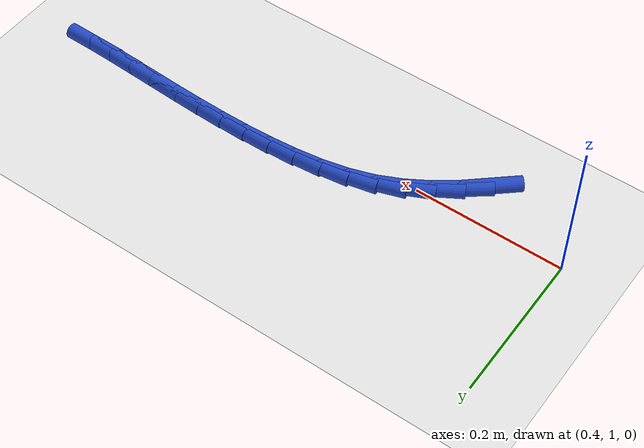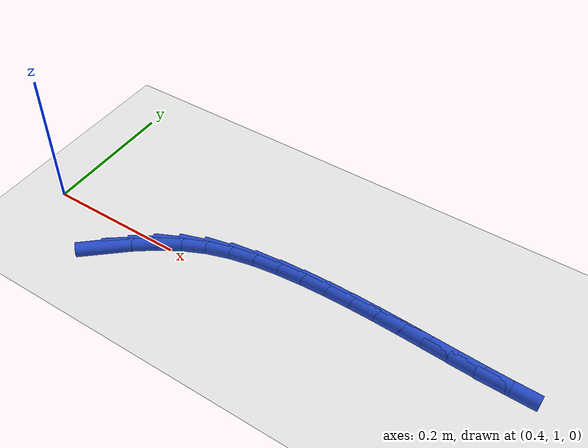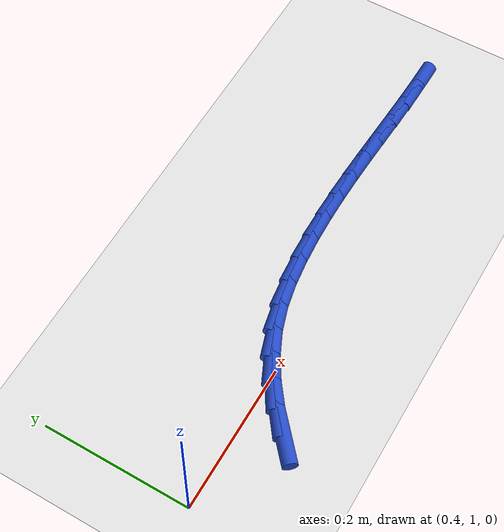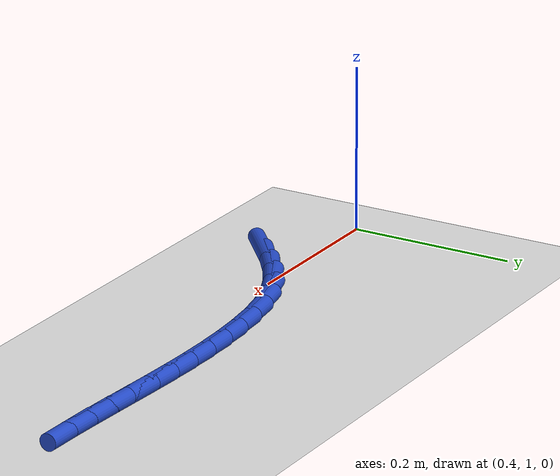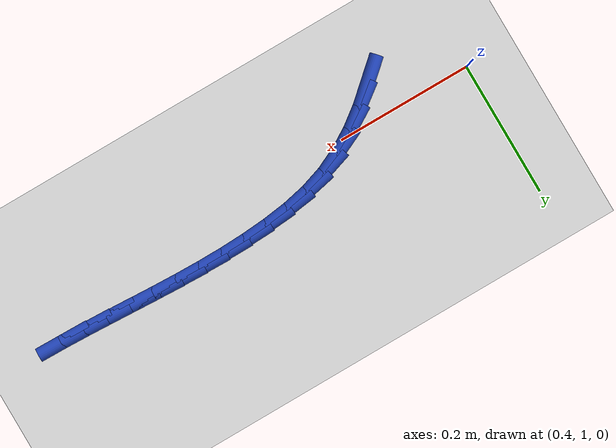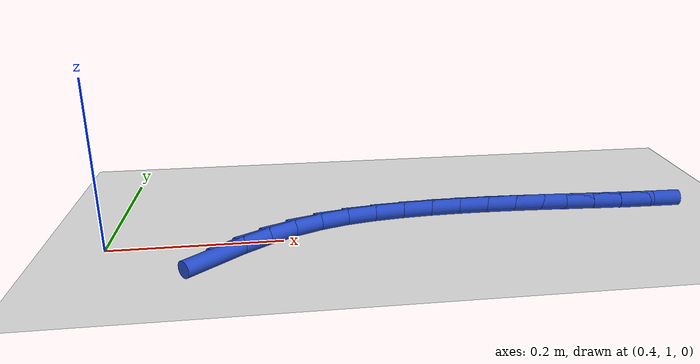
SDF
<sdf version="1.6">
 <world name="default">
  <model name="ground_plane">
   <static>1</static>
   <link name="link">
    <collision name="collision">
     <geometry><plane><normal>0 0 1</normal><size>100 100</size></plane></geometry>
     <surface><friction><ode><mu>100</mu><mu2>50</mu2></ode></friction></surface>
    </collision>
    <visual name="visual">
     <cast_shadows>0</cast_shadows>
     <geometry><plane><normal>0 0 1</normal><size>100 100</size></plane></geometry>
     <material>
      <script><uri>file://media/materials/scripts/gazebo.material</uri><name>Gazebo/WhiteGlow</name></script>
     </material>
    </visual>
   </link>
  </model>
  <model name="line">
   <link name="link_31">
    <pose>0.5286110374248632 0.9498480115313945 0.01 0 1.57 0.7244961222345467</pose>
    <collision name="collision">
     <geometry><cylinder><radius>0.01</radius><length>0.08</length></cylinder></geometry>
    </collision>
    <visual name="visual">
     <material>
      <script><name>Gazebo/Blue</name><uri>file://media/materials/scripts/gazebo.material</uri></script>
     </material>
     <geometry><cylinder><radius>0.01</radius><length>0.08</length></cylinder></geometry>
    </visual>
   </link>
   <link name="link_32">
    <pose>0.5550006376819262 0.973204238144819 0.01 0 1.57 0.6438572448374091</pose>
    <collision name="collision">
     <geometry><cylinder><radius>0.01</radius><length>0.08</length></cylinder></geometry>
    </collision>
    <visual name="visual">
     <material>
      <script><name>Gazebo/Blue</name><uri>file://media/materials/scripts/gazebo.material</uri></script>
     </material>
     <geometry><cylinder><radius>0.01</radius><length>0.08</length></cylinder></geometry>
    </visual>
   </link>
   <link name="link_33">
    <pose>0.5827370269702883 0.9940219684978044 0.01 0 1.57 0.547476759684378</pose>
    <collision name="collision">
     <geometry><cylinder><radius>0.01</radius><length>0.08</length></cylinder></geometry>
    </collision>
    <visual name="visual">
     <material>
      <script><name>Gazebo/Blue</name><uri>file://media/materials/scripts/gazebo.material</uri></script>
     </material>
     <geometry><cylinder><radius>0.01</radius><length>0.08</length></cylinder></geometry>
    </visual>
   </link>
   <link name="link_34">
    <pose>0.6120466352429873 1.0118902442950257 0.01 0 1.57 0.43636869826445623</pose>
    <collision name="collision">
     <geometry><cylinder><radius>0.01</radius><length>0.08</length></cylinder></geometry>
    </collision>
    <visual name="visual">
     <material>
      <script><name>Gazebo/Blue</name><uri>file://media/materials/scripts/gazebo.material</uri></script>
     </material>
     <geometry><cylinder><radius>0.01</radius><length>0.08</length></cylinder></geometry>
    </visual>
   </link>
   <link name="link_35">
    <pose>0.6431558924530612 1.0263981072411583 0.01 0 1.57 0.3146501721234525</pose>
    <collision name="collision">
     <geometry><cylinder><radius>0.01</radius><length>0.08</length></cylinder></geometry>
    </collision>
    <visual name="visual">
     <material>
      <script><name>Gazebo/Blue</name><uri>file://media/materials/scripts/gazebo.material</uri></script>
     </material>
     <geometry><cylinder><radius>0.01</radius><length>0.08</length></cylinder></geometry>
    </visual>
   </link>
   <link name="link_36">
    <pose>0.6762613386042085 1.037172689039796 0.01 0 1.57 0.20700200496431614</pose>
    <collision name="collision">
     <geometry><cylinder><radius>0.01</radius><length>0.08</length></cylinder></geometry>
    </collision>
    <visual name="visual">
     <material>
      <script><name>Gazebo/Blue</name><uri>file://media/materials/scripts/gazebo.material</uri></script>
     </material>
     <geometry><cylinder><radius>0.01</radius><length>0.08</length></cylinder></geometry>
    </visual>
   </link>
   <link name="link_37">
    <pose>0.7110579169194895 1.0444803269219516 0.01 0 1.57 0.12892980339322338</pose>
    <collision name="collision">
     <geometry><cylinder><radius>0.01</radius><length>0.08</length></cylinder></geometry>
    </collision>
    <visual name="visual">
     <material>
      <script><name>Gazebo/Blue</name><uri>file://media/materials/scripts/gazebo.material</uri></script>
     </material>
     <geometry><cylinder><radius>0.01</radius><length>0.08</length></cylinder></geometry>
    </visual>
   </link>
   <link name="link_38">
    <pose>0.746824604092575 1.04911744147457 0.01 0 1.57 0.07601861250404313</pose>
    <collision name="collision">
     <geometry><cylinder><radius>0.01</radius><length>0.08</length></cylinder></geometry>
    </collision>
    <visual name="visual">
     <material>
      <script><name>Gazebo/Blue</name><uri>file://media/materials/scripts/gazebo.material</uri></script>
     </material>
     <geometry><cylinder><radius>0.01</radius><length>0.08</length></cylinder></geometry>
    </visual>
   </link>
   <link name="link_39">
    <pose>0.7828713051989048 1.0518629523296015 0.01 0 1.57 0.036199277869939206</pose>
    <collision name="collision">
     <geometry><cylinder><radius>0.01</radius><length>0.08</length></cylinder></geometry>
    </collision>
    <visual name="visual">
     <material>
      <script><name>Gazebo/Blue</name><uri>file://media/materials/scripts/gazebo.material</uri></script>
     </material>
     <geometry><cylinder><radius>0.01</radius><length>0.08</length></cylinder></geometry>
    </visual>
   </link>
   <link name="link_40">
    <pose>0.8189320868947491 1.0531688970675703 0.01 0 1.57 0.003716762033867465</pose>
    <collision name="collision">
     <geometry><cylinder><radius>0.01</radius><length>0.08</length></cylinder></geometry>
    </collision>
    <visual name="visual">
     <material>
      <script><name>Gazebo/Blue</name><uri>file://media/materials/scripts/gazebo.material</uri></script>
     </material>
     <geometry><cylinder><radius>0.01</radius><length>0.08</length></cylinder></geometry>
    </visual>
   </link>
   <link name="link_41">
    <pose>0.8549803355457485 1.0533028804465074 0.01 0 1.57 -0.021446642383102763</pose>
    <collision name="collision">
     <geometry><cylinder><radius>0.01</radius><length>0.08</length></cylinder></geometry>
    </collision>
    <visual name="visual">
     <material>
      <script><name>Gazebo/Blue</name><uri>file://media/materials/scripts/gazebo.material</uri></script>
     </material>
     <geometry><cylinder><radius>0.01</radius><length>0.08</length></cylinder></geometry>
    </visual>
   </link>
   <link name="link_42">
    <pose>0.8909921330921732 1.0525304298675962 0.01 0 1.57 -0.03929272785194849</pose>
    <collision name="collision">
     <geometry><cylinder><radius>0.01</radius><length>0.08</length></cylinder></geometry>
    </collision>
    <visual name="visual">
     <material>
      <script><name>Gazebo/Blue</name><uri>file://media/materials/scripts/gazebo.material</uri></script>
     </material>
     <geometry><cylinder><radius>0.01</radius><length>0.08</length></cylinder></geometry>
    </visual>
   </link>
   <link name="link_43">
    <pose>0.9269435614742935 1.0511170727320194 0.01 0 1.57 -0.04982988608390382</pose>
    <collision name="collision">
     <geometry><cylinder><radius>0.01</radius><length>0.08</length></cylinder></geometry>
    </collision>
    <visual name="visual">
     <material>
      <script><name>Gazebo/Blue</name><uri>file://media/materials/scripts/gazebo.material</uri></script>
     </material>
     <geometry><cylinder><radius>0.01</radius><length>0.08</length></cylinder></geometry>
    </visual>
   </link>
   <link name="link_44">
    <pose>0.9628107026323792 1.049328336440961 0.01 0 1.57 -0.05304428059340749</pose>
    <collision name="collision">
     <geometry><cylinder><radius>0.01</radius><length>0.08</length></cylinder></geometry>
    </collision>
    <visual name="visual">
     <material>
      <script><name>Gazebo/Blue</name><uri>file://media/materials/scripts/gazebo.material</uri></script>
     </material>
     <geometry><cylinder><radius>0.01</radius><length>0.08</length></cylinder></geometry>
    </visual>
   </link>
   <link name="link_45">
    <pose>0.9985696385067008 1.0474297483956034 0.01 0 1.57 -0.04888239588245125</pose>
    <collision name="collision">
     <geometry><cylinder><radius>0.01</radius><length>0.08</length></cylinder></geometry>
    </collision>
    <visual name="visual">
     <material>
      <script><name>Gazebo/Blue</name><uri>file://media/materials/scripts/gazebo.material</uri></script>
     </material>
     <geometry><cylinder><radius>0.01</radius><length>0.08</length></cylinder></geometry>
    </visual>
   </link>
   <link name="link_46">
    <pose>1.034196451037528 1.0456868359971303 0.01 0 1.57 -0.03724469775519393</pose>
    <collision name="collision">
     <geometry><cylinder><radius>0.01</radius><length>0.08</length></cylinder></geometry>
    </collision>
    <visual name="visual">
     <material>
      <script><name>Gazebo/Blue</name><uri>file://media/materials/scripts/gazebo.material</uri></script>
     </material>
     <geometry><cylinder><radius>0.01</radius><length>0.08</length></cylinder></geometry>
    </visual>
   </link>
   <link name="link_47">
    <pose>1.0696672221651309 1.0443651266467244 0.01 0 1.57 -0.01799081296213666</pose>
    <collision name="collision">
     <geometry><cylinder><radius>0.01</radius><length>0.08</length></cylinder></geometry>
    </collision>
    <visual name="visual">
     <material>
      <script><name>Gazebo/Blue</name><uri>file://media/materials/scripts/gazebo.material</uri></script>
     </material>
     <geometry><cylinder><radius>0.01</radius><length>0.08</length></cylinder></geometry>
    </visual>
   </link>
  </model>
 </world>
</sdf>
